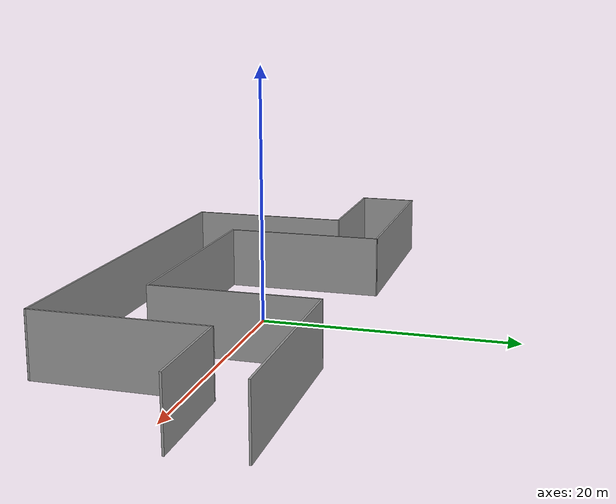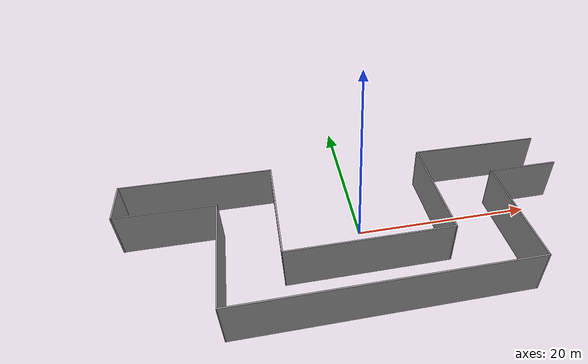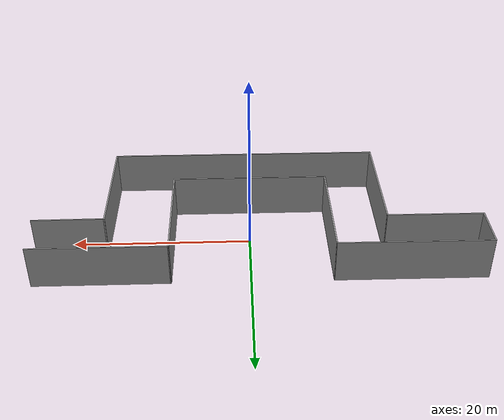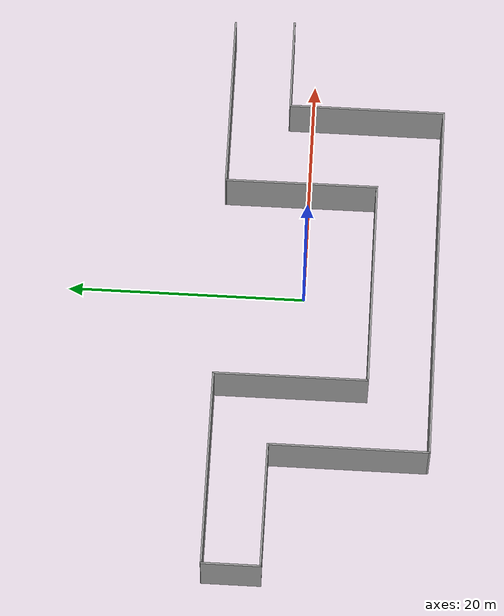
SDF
<?xml version='1.0'?>
<sdf version='1.6'>
  <model name='maze_final2'>
    <pose frame=''>-0.943572 -1.95156 0 0 -0 0</pose>
    <link name='Wall_10'>
      <collision name='Wall_10_Collision'>
        <geometry>
          <box>
            <size>12.9601 0.15 5</size>
          </box>
        </geometry>
        <pose frame=''>0 0 2.5 0 -0 0</pose>
      </collision>
      <visual name='Wall_10_Visual'>
        <pose frame=''>0 0 2.5 0 -0 0</pose>
        <geometry>
          <box>
            <size>12.9601 0.15 5</size>
          </box>
        </geometry>
        <material>
          <script>
            <uri>file://media/materials/scripts/gazebo.material</uri>
            <name>Gazebo/Grey</name>
          </script>
          <ambient>1 1 1 1</ambient>
        </material>
      </visual>
      <pose frame=''>9.62007 2.65756 0 0 -0 1.574</pose>
    </link>
    <link name='Wall_11'>
      <collision name='Wall_11_Collision'>
        <geometry>
          <box>
            <size>15 0.15 5</size>
          </box>
        </geometry>
        <pose frame=''>0 0 2.5 0 -0 0</pose>
      </collision>
      <visual name='Wall_11_Visual'>
        <pose frame=''>0 0 2.5 0 -0 0</pose>
        <geometry>
          <box>
            <size>15 0.15 5</size>
          </box>
        </geometry>
        <material>
          <script>
            <uri>file://media/materials/scripts/gazebo.material</uri>
            <name>Gazebo/Grey</name>
          </script>
          <ambient>1 1 1 1</ambient>
        </material>
      </visual>
      <pose frame=''>17.0246 9.06206 0 0 0 -6.7e-05</pose>
    </link>
    <link name='Wall_13'>
      <collision name='Wall_13_Collision'>
        <geometry>
          <box>
            <size>5 0.15 5</size>
          </box>
        </geometry>
        <pose frame=''>0 0 2.5 0 -0 0</pose>
      </collision>
      <visual name='Wall_13_Visual'>
        <pose frame=''>0 0 2.5 0 -0 0</pose>
        <geometry>
          <box>
            <size>5 0.15 5</size>
          </box>
        </geometry>
        <material>
          <script>
            <uri>file://media/materials/scripts/gazebo.material</uri>
            <name>Gazebo/Grey</name>
          </script>
          <ambient>1 1 1 1</ambient>
        </material>
      </visual>
      <pose frame=''>-24.6999 6.67756 0 0 0 -1.5708</pose>
    </link>
    <link name='Wall_14'>
      <collision name='Wall_14_Collision'>
        <geometry>
          <box>
            <size>10.7524 0.15 5</size>
          </box>
        </geometry>
        <pose frame=''>0 0 2.5 0 -0 0</pose>
      </collision>
      <visual name='Wall_14_Visual'>
        <pose frame=''>0 0 2.5 0 -0 0</pose>
        <geometry>
          <box>
            <size>10.7524 0.15 5</size>
          </box>
        </geometry>
        <material>
          <script>
            <uri>file://media/materials/scripts/gazebo.material</uri>
            <name>Gazebo/Grey</name>
          </script>
          <ambient>1 1 1 1</ambient>
        </material>
      </visual>
      <pose frame=''>-19.3636 4.27015 0 0 0 -0.003318</pose>
    </link>
    <link name='Wall_15'>
      <collision name='Wall_15_Collision'>
        <geometry>
          <box>
            <size>13.5 0.15 5</size>
          </box>
        </geometry>
        <pose frame=''>0 0 2.5 0 -0 0</pose>
      </collision>
      <visual name='Wall_15_Visual'>
        <pose frame=''>0 0 2.5 0 -0 0</pose>
        <geometry>
          <box>
            <size>13.5 0.15 5</size>
          </box>
        </geometry>
        <material>
          <script>
            <uri>file://media/materials/scripts/gazebo.material</uri>
            <name>Gazebo/Grey</name>
          </script>
          <ambient>1 1 1 1</ambient>
        </material>
      </visual>
      <pose frame=''>-14.0619 -2.42244 0 0 0 -1.57072</pose>
    </link>
    <link name='Wall_16'>
      <collision name='Wall_16_Collision'>
        <geometry>
          <box>
            <size>31.0613 0.15 5</size>
          </box>
        </geometry>
        <pose frame=''>0 0 2.5 0 -0 0</pose>
      </collision>
      <visual name='Wall_16_Visual'>
        <pose frame=''>0 0 2.5 0 -0 0</pose>
        <geometry>
          <box>
            <size>31.0613 0.15 5</size>
          </box>
        </geometry>
        <material>
          <script>
            <uri>file://media/materials/scripts/gazebo.material</uri>
            <name>Gazebo/Grey</name>
          </script>
          <ambient>1 1 1 1</ambient>
        </material>
      </visual>
      <pose frame=''>1.39407 -9.11744 0 0 0 -0.001294</pose>
    </link>
    <link name='Wall_17'>
      <collision name='Wall_17_Collision'>
        <geometry>
          <box>
            <size>13.2499 0.15 5</size>
          </box>
        </geometry>
        <pose frame=''>0 0 2.5 0 -0 0</pose>
      </collision>
      <visual name='Wall_17_Visual'>
        <pose frame=''>0 0 2.5 0 -0 0</pose>
        <geometry>
          <box>
            <size>13.2499 0.15 5</size>
          </box>
        </geometry>
        <material>
          <script>
            <uri>file://media/materials/scripts/gazebo.material</uri>
            <name>Gazebo/Grey</name>
          </script>
          <ambient>1 1 1 1</ambient>
        </material>
      </visual>
      <pose frame=''>16.8496 -2.58794 0 0 -0 1.5708</pose>
    </link>
    <link name='Wall_18'>
      <collision name='Wall_18_Collision'>
        <geometry>
          <box>
            <size>8 0.15 5</size>
          </box>
        </geometry>
        <pose frame=''>0 0 2.5 0 -0 0</pose>
      </collision>
      <visual name='Wall_18_Visual'>
        <pose frame=''>0 0 2.5 0 -0 0</pose>
        <geometry>
          <box>
            <size>8 0.15 5</size>
          </box>
        </geometry>
        <material>
          <script>
            <uri>file://media/materials/scripts/gazebo.material</uri>
            <name>Gazebo/Grey</name>
          </script>
          <ambient>1 1 1 1</ambient>
        </material>
      </visual>
      <pose frame=''>20.7746 3.98206 0 0 -0 0.005223</pose>
    </link>
    <link name='Wall_7'>
      <collision name='Wall_7_Collision'>
        <geometry>
          <box>
            <size>16.8143 0.15 5</size>
          </box>
        </geometry>
        <pose frame=''>0 0 2.5 0 -0 0</pose>
      </collision>
      <visual name='Wall_7_Visual'>
        <pose frame=''>0 0 2.5 0 -0 0</pose>
        <geometry>
          <box>
            <size>16.8143 0.15 5</size>
          </box>
        </geometry>
        <material>
          <script>
            <uri>file://media/materials/scripts/gazebo.material</uri>
            <name>Gazebo/Grey</name>
          </script>
          <ambient>1 1 1 1</ambient>
        </material>
      </visual>
      <pose frame=''>-16.3326 9.12015 0 0 0 -0.002111</pose>
    </link>
    <link name='Wall_8'>
      <collision name='Wall_8_Collision'>
        <geometry>
          <box>
            <size>13 0.15 5</size>
          </box>
        </geometry>
        <pose frame=''>0 0 2.5 0 -0 0</pose>
      </collision>
      <visual name='Wall_8_Visual'>
        <pose frame=''>0 0 2.5 0 -0 0</pose>
        <geometry>
          <box>
            <size>13 0.15 5</size>
          </box>
        </geometry>
        <material>
          <script>
            <uri>file://media/materials/scripts/gazebo.material</uri>
            <name>Gazebo/Grey</name>
          </script>
          <ambient>1 1 1 1</ambient>
        </material>
      </visual>
      <pose frame=''>-7.98043 2.67756 0 0 0 -1.56768</pose>
    </link>
    <link name='Wall_9'>
      <collision name='Wall_9_Collision'>
        <geometry>
          <box>
            <size>17.7503 0.15 5</size>
          </box>
        </geometry>
        <pose frame=''>0 0 2.5 0 -0 0</pose>
      </collision>
      <visual name='Wall_9_Visual'>
        <pose frame=''>0 0 2.5 0 -0 0</pose>
        <geometry>
          <box>
            <size>17.7503 0.15 5</size>
          </box>
        </geometry>
        <material>
          <script>
            <uri>file://media/materials/scripts/gazebo.material</uri>
            <name>Gazebo/Grey</name>
          </script>
          <ambient>1 1 1 1</ambient>
        </material>
      </visual>
      <pose frame=''>0.840072 -3.74744 0 0 -0 0</pose>
    </link>
    <static>1</static>
  </model>
</sdf>
